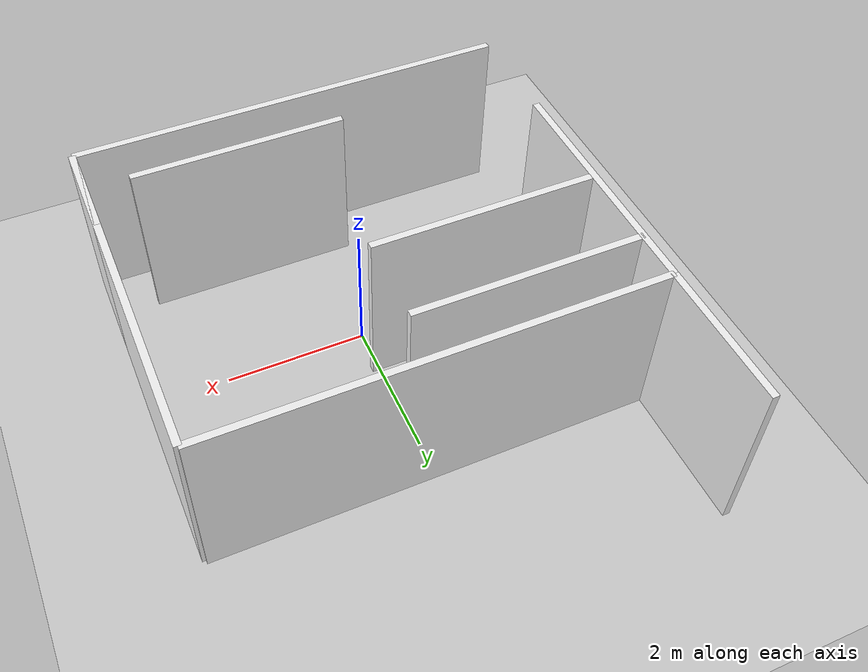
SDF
<?xml version="1.0"?>
<sdf version="1.6">
  <world name="3bhk_house">

    <!-- Physics -->
    <physics type="ode">
      <max_step_size>0.001</max_step_size>
      <real_time_factor>1.0</real_time_factor>
      <real_time_update_rate>1000</real_time_update_rate>
    </physics>

    <!-- Scene -->
    <scene>
      <ambient>0.4 0.4 0.4 1</ambient>
      <background>0.85 0.85 0.9 1</background>
      <shadows>true</shadows>
    </scene>

    <!-- Ground -->
    <model name="ground_plane">
      <static>true</static>
      <link name="link">
        <collision name="collision">
          <geometry>
            <plane><normal>0 0 1</normal><size>100 100</size></plane>
          </geometry>
          <surface>
            <friction>
              <ode><mu>100</mu><mu2>50</mu2></ode>
            </friction>
          </surface>
        </collision>
        <visual name="visual">
          <geometry>
            <plane><normal>0 0 1</normal><size>100 100</size></plane>
          </geometry>
          <material>
            <ambient>0.8 0.8 0.8 1</ambient>
            <diffuse>0.8 0.8 0.8 1</diffuse>
          </material>
        </visual>
      </link>
    </model>

    <!-- Sun -->
    <light name="sun" type="directional">
      <pose>5 5 10 0 0 0</pose>
      <diffuse>0.8 0.8 0.8 1</diffuse>
      <specular>0.2 0.2 0.2 1</specular>
      <direction>-0.5 0.1 -0.9</direction>
      <cast_shadows>true</cast_shadows>
    </light>

    <!-- Indoor lights -->
    <light name="living_light" type="point">
      <pose>0 0 2.5 0 0 0</pose>
      <diffuse>0.9 0.9 0.85 1</diffuse>
      <attenuation><range>8</range><constant>0.5</constant><linear>0.01</linear><quadratic>0.001</quadratic></attenuation>
    </light>
    <light name="kitchen_light" type="point">
      <pose>3.5 -1.5 2.5 0 0 0</pose>
      <diffuse>0.9 0.9 0.85 1</diffuse>
      <attenuation><range>6</range><constant>0.5</constant><linear>0.01</linear><quadratic>0.001</quadratic></attenuation>
    </light>
    <light name="bedroom_light" type="point">
      <pose>-2 3.5 2.5 0 0 0</pose>
      <diffuse>0.9 0.9 0.85 1</diffuse>
      <attenuation><range>6</range><constant>0.5</constant><linear>0.01</linear><quadratic>0.001</quadratic></attenuation>
    </light>

    <!-- ==================== OUTER WALLS ==================== -->
    <!-- North wall (Living room + Kitchen) -->
    <model name="wall_north_living"><static>true</static><pose>0 2.5 1.25 0 0 0</pose>
      <link name="link"><collision name="c"><geometry><box><size>6.2 0.1 2.5</size></box></geometry></collision>
      <visual name="v"><geometry><box><size>6.2 0.1 2.5</size></box></geometry><material><ambient>0.95 0.95 0.95 1</ambient></material></visual></link></model>

    <!-- South wall -->
    <model name="wall_south"><static>true</static><pose>0 -2.5 1.25 0 0 0</pose>
      <link name="link"><collision name="c"><geometry><box><size>6.2 0.1 2.5</size></box></geometry></collision>
      <visual name="v"><geometry><box><size>6.2 0.1 2.5</size></box></geometry><material><ambient>0.95 0.95 0.95 1</ambient></material></visual></link></model>

    <!-- East wall (Living side) -->
    <model name="wall_east_living"><static>true</static><pose>3.1 0 1.25 0 0 0</pose>
      <link name="link"><collision name="c"><geometry><box><size>0.1 5.0 2.5</size></box></geometry></collision>
      <visual name="v"><geometry><box><size>0.1 5.0 2.5</size></box></geometry><material><ambient>0.95 0.95 0.95 1</ambient></material></visual></link></model>

    <!-- East wall (Kitchen extension) -->
    <model name="wall_east_kitchen"><static>true</static><pose>3.1 -1.8 1.25 0 0 0</pose>
      <link name="link"><collision name="c"><geometry><box><size>0.1 1.4 2.5</size></box></geometry></collision>
      <visual name="v"><geometry><box><size>0.1 1.4 2.5</size></box></geometry><material><ambient>0.95 0.95 0.95 1</ambient></material></visual></link></model>

    <!-- West wall (Living) -->
    <model name="wall_west_living"><static>true</static><pose>-3.1 0.75 1.25 0 0 0</pose>
      <link name="link"><collision name="c"><geometry><box><size>0.1 3.5 2.5</size></box></geometry></collision>
      <visual name="v"><geometry><box><size>0.1 3.5 2.5</size></box></geometry><material><ambient>0.95 0.95 0.95 1</ambient></material></visual></link></model>

    <!-- West wall (Bedroom side) -->
    <model name="wall_west_bed"><static>true</static><pose>-3.1 3.5 1.25 0 0 0</pose>
      <link name="link"><collision name="c"><geometry><box><size>0.1 2.0 2.5</size></box></geometry></collision>
      <visual name="v"><geometry><box><size>0.1 2.0 2.5</size></box></geometry><material><ambient>0.95 0.95 0.95 1</ambient></material></visual></link></model>

    <!-- ==================== INNER WALLS ==================== -->
    <!-- Living-Kitchen divider (with doorway at x=2.5) -->
    <model name="wall_living_kitchen_1"><static>true</static><pose>1.0 -1.8 1.25 0 0 0</pose>
      <link name="link"><collision name="c"><geometry><box><size>3.0 0.1 2.5</size></box></geometry></collision>
      <visual name="v"><geometry><box><size>3.0 0.1 2.5</size></box></geometry><material><ambient>0.95 0.95 0.95 1</ambient></material></visual></link></model>

    <!-- Hallway divider -->
    <model name="wall_hallway_north"><static>true</static><pose>-1.5 2.5 1.25 0 0 0</pose>
      <link name="link"><collision name="c"><geometry><box><size>3.2 0.1 2.5</size></box></geometry></collision>
      <visual name="v"><geometry><box><size>3.2 0.1 2.5</size></box></geometry><material><ambient>0.95 0.95 0.95 1</ambient></material></visual></link></model>

    <!-- Bedroom 1 divider (Master) -->
    <model name="wall_bed1_south"><static>true</static><pose>-1.5 1.8 1.25 0 0 0</pose>
      <link name="link"><collision name="c"><geometry><box><size>3.2 0.1 2.5</size></box></geometry></collision>
      <visual name="v"><geometry><box><size>3.2 0.1 2.5</size></box></geometry><material><ambient>0.95 0.95 0.95 1</ambient></material></visual></link></model>

    <!-- Bedroom 2 divider -->
    <model name="wall_bed2_south"><static>true</static><pose>-1.5 0.6 1.25 0 0 0</pose>
      <link name="link"><collision name="c"><geometry><box><size>3.2 0.1 2.5</size></box></geometry></collision>
      <visual name="v"><geometry><box><size>3.2 0.1 2.5</size></box></geometry><material><ambient>0.95 0.95 0.95 1</ambient></material></visual></link></model>

    <!-- ==================== FURNITURE FROM GAZEBO FUEL ==================== -->
    <!-- Removed due to Gazebo Fuel fetch failures. -->

  </world>
</sdf>
